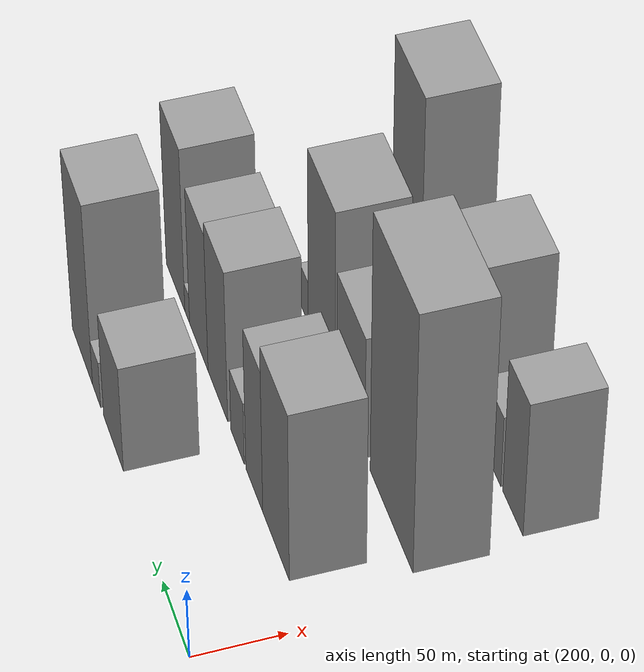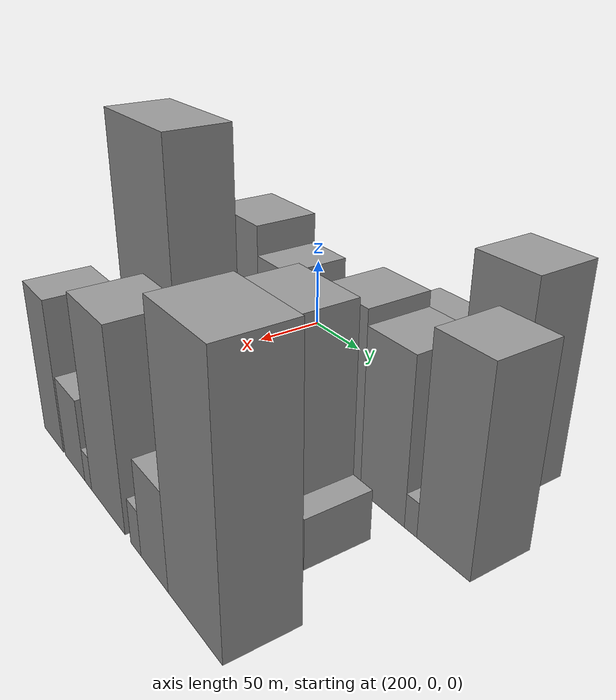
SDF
<sdf version="1.6">
 <world name="default">
  <model name="building_147">
   <static>1</static>
   <pose>220.0000 146.3898 0 0.000000 0.000000 0.000000</pose>
   <link name="link">
    <pose>0 0 37.50 0 0 0</pose>
    <collision name="collision"><geometry><box><size>40.0000 40.1257 75.0000</size></box></geometry></collision>
    <visual name="visual">
     <cast_shadows>0</cast_shadows>
     <geometry><box><size>40.0000 40.1257 75.0000</size></box></geometry>
     <material>
      <script>
       <uri>model://grey_wall/materials/scripts</uri>
       <uri>model://grey_wall/materials/textures</uri>
       <name>vrc/grey_wall</name>
      </script>
     </material>
    </visual>
   </link>
  </model>
  <model name="building_148">
   <static>1</static>
   <pose>220.0000 180.8749 0 0.000000 0.000000 0.000000</pose>
   <link name="link">
    <pose>0 0 16.50 0 0 0</pose>
    <collision name="collision"><geometry><box><size>40.0000 16.8444 33.0000</size></box></geometry></collision>
    <visual name="visual">
     <cast_shadows>0</cast_shadows>
     <geometry><box><size>40.0000 16.8444 33.0000</size></box></geometry>
     <material>
      <script>
       <uri>model://grey_wall/materials/scripts</uri>
       <uri>model://grey_wall/materials/textures</uri>
       <name>vrc/grey_wall</name>
      </script>
     </material>
    </visual>
   </link>
  </model>
  <model name="building_149">
   <static>1</static>
   <pose>220.0000 210.6465 0 0.000000 0.000000 0.000000</pose>
   <link name="link">
    <pose>0 0 64.50 0 0 0</pose>
    <collision name="collision"><geometry><box><size>40.0000 42.6989 129.0000</size></box></geometry></collision>
    <visual name="visual">
     <cast_shadows>0</cast_shadows>
     <geometry><box><size>40.0000 42.6989 129.0000</size></box></geometry>
     <material>
      <script>
       <uri>model://grey_wall/materials/scripts</uri>
       <uri>model://grey_wall/materials/textures</uri>
       <name>vrc/grey_wall</name>
      </script>
     </material>
    </visual>
   </link>
  </model>
  <model name="building_195">
   <static>1</static>
   <pose>280.0000 55.7903 0 0.000000 0.000000 0.000000</pose>
   <link name="link">
    <pose>0 0 60.00 0 0 0</pose>
    <collision name="collision"><geometry><box><size>40.0000 47.1613 120.0000</size></box></geometry></collision>
    <visual name="visual">
     <cast_shadows>0</cast_shadows>
     <geometry><box><size>40.0000 47.1613 120.0000</size></box></geometry>
     <material>
      <script>
       <uri>model://grey_wall/materials/scripts</uri>
       <uri>model://grey_wall/materials/textures</uri>
       <name>vrc/grey_wall</name>
      </script>
     </material>
    </visual>
   </link>
  </model>
  <model name="building_196">
   <static>1</static>
   <pose>280.0000 94.6993 0 0.000000 0.000000 0.000000</pose>
   <link name="link">
    <pose>0 0 51.00 0 0 0</pose>
    <collision name="collision"><geometry><box><size>40.0000 30.6566 102.0000</size></box></geometry></collision>
    <visual name="visual">
     <cast_shadows>0</cast_shadows>
     <geometry><box><size>40.0000 30.6566 102.0000</size></box></geometry>
     <material>
      <script>
       <uri>model://grey_wall/materials/scripts</uri>
       <uri>model://grey_wall/materials/textures</uri>
       <name>vrc/grey_wall</name>
      </script>
     </material>
    </visual>
   </link>
  </model>
  <model name="building_197">
   <static>1</static>
   <pose>280.0000 125.4680 0 0.000000 0.000000 0.000000</pose>
   <link name="link">
    <pose>0 0 22.50 0 0 0</pose>
    <collision name="collision"><geometry><box><size>40.0000 24.8808 45.0000</size></box></geometry></collision>
    <visual name="visual">
     <cast_shadows>0</cast_shadows>
     <geometry><box><size>40.0000 24.8808 45.0000</size></box></geometry>
     <material>
      <script>
       <uri>model://grey_wall/materials/scripts</uri>
       <uri>model://grey_wall/materials/textures</uri>
       <name>vrc/grey_wall</name>
      </script>
     </material>
    </visual>
   </link>
  </model>
  <model name="building_198">
   <static>1</static>
   <pose>280.0000 162.5862 0 0.000000 0.000000 0.000000</pose>
   <link name="link">
    <pose>0 0 54.00 0 0 0</pose>
    <collision name="collision"><geometry><box><size>40.0000 37.3557 108.0000</size></box></geometry></collision>
    <visual name="visual">
     <cast_shadows>0</cast_shadows>
     <geometry><box><size>40.0000 37.3557 108.0000</size></box></geometry>
     <material>
      <script>
       <uri>model://grey_wall/materials/scripts</uri>
       <uri>model://grey_wall/materials/textures</uri>
       <name>vrc/grey_wall</name>
      </script>
     </material>
    </visual>
   </link>
  </model>
  <model name="building_199">
   <static>1</static>
   <pose>280.0000 199.3553 0 0.000000 0.000000 0.000000</pose>
   <link name="link">
    <pose>0 0 49.50 0 0 0</pose>
    <collision name="collision"><geometry><box><size>40.0000 36.1824 99.0000</size></box></geometry></collision>
    <visual name="visual">
     <cast_shadows>0</cast_shadows>
     <geometry><box><size>40.0000 36.1824 99.0000</size></box></geometry>
     <material>
      <script>
       <uri>model://grey_wall/materials/scripts</uri>
       <uri>model://grey_wall/materials/textures</uri>
       <name>vrc/grey_wall</name>
      </script>
     </material>
    </visual>
   </link>
  </model>
  <model name="building_200">
   <static>1</static>
   <pose>280.0000 222.1697 0 0.000000 0.000000 0.000000</pose>
   <link name="link">
    <pose>0 0 10.50 0 0 0</pose>
    <collision name="collision"><geometry><box><size>40.0000 9.4466 21.0000</size></box></geometry></collision>
    <visual name="visual">
     <cast_shadows>0</cast_shadows>
     <geometry><box><size>40.0000 9.4466 21.0000</size></box></geometry>
     <material>
      <script>
       <uri>model://grey_wall/materials/scripts</uri>
       <uri>model://grey_wall/materials/textures</uri>
       <name>vrc/grey_wall</name>
      </script>
     </material>
    </visual>
   </link>
  </model>
  <model name="building_201">
   <static>1</static>
   <pose>280.0000 245.6310 0 0.000000 0.000000 0.000000</pose>
   <link name="link">
    <pose>0 0 58.50 0 0 0</pose>
    <collision name="collision"><geometry><box><size>40.0000 37.4759 117.0000</size></box></geometry></collision>
    <visual name="visual">
     <cast_shadows>0</cast_shadows>
     <geometry><box><size>40.0000 37.4759 117.0000</size></box></geometry>
     <material>
      <script>
       <uri>model://grey_wall/materials/scripts</uri>
       <uri>model://grey_wall/materials/textures</uri>
       <name>vrc/grey_wall</name>
      </script>
     </material>
    </visual>
   </link>
  </model>
  <model name="building_257">
   <static>1</static>
   <pose>340.0000 54.7826 0 0.000000 0.000000 0.000000</pose>
   <link name="link">
    <pose>0 0 91.50 0 0 0</pose>
    <collision name="collision"><geometry><box><size>40.0000 71.1743 183.0000</size></box></geometry></collision>
    <visual name="visual">
     <cast_shadows>0</cast_shadows>
     <geometry><box><size>40.0000 71.1743 183.0000</size></box></geometry>
     <material>
      <script>
       <uri>model://grey_wall/materials/scripts</uri>
       <uri>model://grey_wall/materials/textures</uri>
       <name>vrc/grey_wall</name>
      </script>
     </material>
    </visual>
   </link>
  </model>
  <model name="building_258">
   <static>1</static>
   <pose>340.0000 123.6533 0 0.000000 0.000000 0.000000</pose>
   <link name="link">
    <pose>0 0 43.50 0 0 0</pose>
    <collision name="collision"><geometry><box><size>40.0000 48.5670 87.0000</size></box></geometry></collision>
    <visual name="visual">
     <cast_shadows>0</cast_shadows>
     <geometry><box><size>40.0000 48.5670 87.0000</size></box></geometry>
     <material>
      <script>
       <uri>model://grey_wall/materials/scripts</uri>
       <uri>model://grey_wall/materials/textures</uri>
       <name>vrc/grey_wall</name>
      </script>
     </material>
    </visual>
   </link>
  </model>
  <model name="building_259">
   <static>1</static>
   <pose>340.0000 175.3327 0 0.000000 0.000000 0.000000</pose>
   <link name="link">
    <pose>0 0 63.00 0 0 0</pose>
    <collision name="collision"><geometry><box><size>40.0000 48.7920 126.0000</size></box></geometry></collision>
    <visual name="visual">
     <cast_shadows>0</cast_shadows>
     <geometry><box><size>40.0000 48.7920 126.0000</size></box></geometry>
     <material>
      <script>
       <uri>model://grey_wall/materials/scripts</uri>
       <uri>model://grey_wall/materials/textures</uri>
       <name>vrc/grey_wall</name>
      </script>
     </material>
    </visual>
   </link>
  </model>
  <model name="building_260">
   <static>1</static>
   <pose>340.0000 207.3594 0 0.000000 0.000000 0.000000</pose>
   <link name="link">
    <pose>0 0 15.00 0 0 0</pose>
    <collision name="collision"><geometry><box><size>40.0000 15.2614 30.0000</size></box></geometry></collision>
    <visual name="visual">
     <cast_shadows>0</cast_shadows>
     <geometry><box><size>40.0000 15.2614 30.0000</size></box></geometry>
     <material>
      <script>
       <uri>model://grey_wall/materials/scripts</uri>
       <uri>model://grey_wall/materials/textures</uri>
       <name>vrc/grey_wall</name>
      </script>
     </material>
    </visual>
   </link>
  </model>
  <model name="building_307">
   <static>1</static>
   <pose>400.0000 41.9478 0 0.000000 0.000000 0.000000</pose>
   <link name="link">
    <pose>0 0 48.00 0 0 0</pose>
    <collision name="collision"><geometry><box><size>40.0000 31.5852 96.0000</size></box></geometry></collision>
    <visual name="visual">
     <cast_shadows>0</cast_shadows>
     <geometry><box><size>40.0000 31.5852 96.0000</size></box></geometry>
     <material>
      <script>
       <uri>model://grey_wall/materials/scripts</uri>
       <uri>model://grey_wall/materials/textures</uri>
       <name>vrc/grey_wall</name>
      </script>
     </material>
    </visual>
   </link>
  </model>
  <model name="building_308">
   <static>1</static>
   <pose>400.0000 75.7400 0 0.000000 0.000000 0.000000</pose>
   <link name="link">
    <pose>0 0 25.50 0 0 0</pose>
    <collision name="collision"><geometry><box><size>40.0000 29.9993 51.0000</size></box></geometry></collision>
    <visual name="visual">
     <cast_shadows>0</cast_shadows>
     <geometry><box><size>40.0000 29.9993 51.0000</size></box></geometry>
     <material>
      <script>
       <uri>model://grey_wall/materials/scripts</uri>
       <uri>model://grey_wall/materials/textures</uri>
       <name>vrc/grey_wall</name>
      </script>
     </material>
    </visual>
   </link>
  </model>
  <model name="building_309">
   <static>1</static>
   <pose>400.0000 95.6893 0 0.000000 0.000000 0.000000</pose>
   <link name="link">
    <pose>0 0 10.50 0 0 0</pose>
    <collision name="collision"><geometry><box><size>40.0000 9.8992 21.0000</size></box></geometry></collision>
    <visual name="visual">
     <cast_shadows>0</cast_shadows>
     <geometry><box><size>40.0000 9.8992 21.0000</size></box></geometry>
     <material>
      <script>
       <uri>model://grey_wall/materials/scripts</uri>
       <uri>model://grey_wall/materials/textures</uri>
       <name>vrc/grey_wall</name>
      </script>
     </material>
    </visual>
   </link>
  </model>
  <model name="building_310">
   <static>1</static>
   <pose>400.0000 122.5218 0 0.000000 0.000000 0.000000</pose>
   <link name="link">
    <pose>0 0 58.50 0 0 0</pose>
    <collision name="collision"><geometry><box><size>40.0000 43.7657 117.0000</size></box></geometry></collision>
    <visual name="visual">
     <cast_shadows>0</cast_shadows>
     <geometry><box><size>40.0000 43.7657 117.0000</size></box></geometry>
     <material>
      <script>
       <uri>model://grey_wall/materials/scripts</uri>
       <uri>model://grey_wall/materials/textures</uri>
       <name>vrc/grey_wall</name>
      </script>
     </material>
    </visual>
   </link>
  </model>
  <model name="building_311">
   <static>1</static>
   <pose>400.0000 157.3936 0 0.000000 0.000000 0.000000</pose>
   <link name="link">
    <pose>0 0 13.50 0 0 0</pose>
    <collision name="collision"><geometry><box><size>40.0000 11.9780 27.0000</size></box></geometry></collision>
    <visual name="visual">
     <cast_shadows>0</cast_shadows>
     <geometry><box><size>40.0000 11.9780 27.0000</size></box></geometry>
     <material>
      <script>
       <uri>model://grey_wall/materials/scripts</uri>
       <uri>model://grey_wall/materials/textures</uri>
       <name>vrc/grey_wall</name>
      </script>
     </material>
    </visual>
   </link>
  </model>
  <model name="building_312">
   <static>1</static>
   <pose>400.0000 178.0749 0 0.000000 0.000000 0.000000</pose>
   <link name="link">
    <pose>0 0 28.50 0 0 0</pose>
    <collision name="collision"><geometry><box><size>40.0000 29.3846 57.0000</size></box></geometry></collision>
    <visual name="visual">
     <cast_shadows>0</cast_shadows>
     <geometry><box><size>40.0000 29.3846 57.0000</size></box></geometry>
     <material>
      <script>
       <uri>model://grey_wall/materials/scripts</uri>
       <uri>model://grey_wall/materials/textures</uri>
       <name>vrc/grey_wall</name>
      </script>
     </material>
    </visual>
   </link>
  </model>
  <model name="building_313">
   <static>1</static>
   <pose>400.0000 217.9484 0 0.000000 0.000000 0.000000</pose>
   <link name="link">
    <pose>0 0 75.00 0 0 0</pose>
    <collision name="collision"><geometry><box><size>40.0000 50.3626 150.0000</size></box></geometry></collision>
    <visual name="visual">
     <cast_shadows>0</cast_shadows>
     <geometry><box><size>40.0000 50.3626 150.0000</size></box></geometry>
     <material>
      <script>
       <uri>model://grey_wall/materials/scripts</uri>
       <uri>model://grey_wall/materials/textures</uri>
       <name>vrc/grey_wall</name>
      </script>
     </material>
    </visual>
   </link>
  </model>
 </world>
</sdf>
